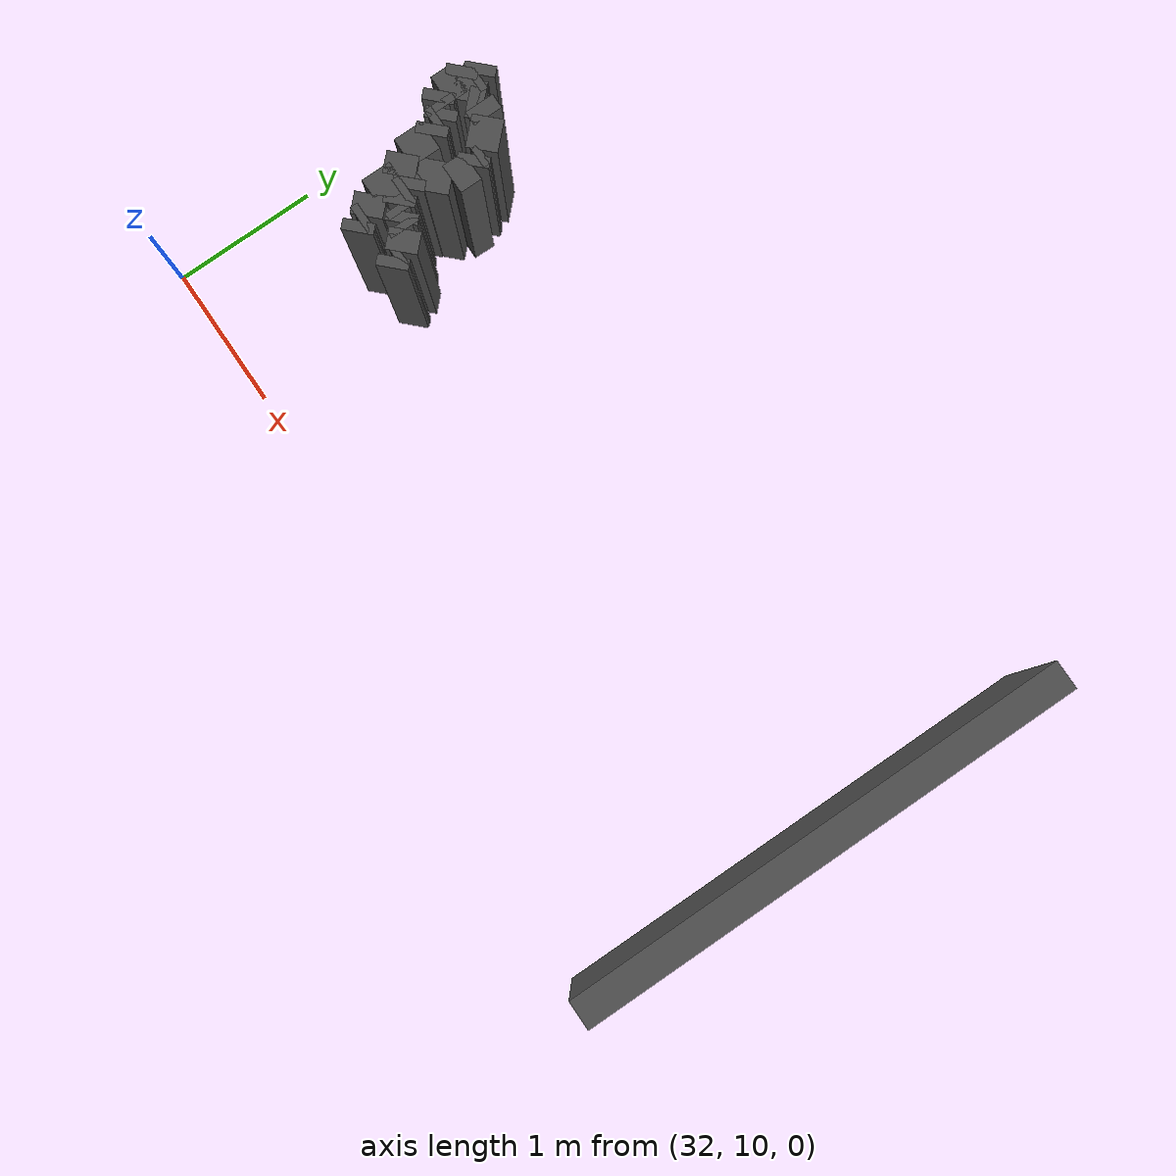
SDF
<sdf version="1.9">
 <model name="generated_walls">
  <static>true</static>
  <link name="wall_155_10">
   <pose>37.400 11.275 0.75 0 0 1.571</pose>
   <collision name="collision"><geometry><box><size>3.450 0.2 1.5</size></box></geometry></collision>
   <visual name="visual">
    <geometry><box><size>3.450 0.2 1.5</size></box></geometry>
    <material><ambient>0.3 0.3 0.3 1</ambient></material>
   </visual>
  </link>
  <link name="wall_161_1437">
   <pose>32.825 11.075 0.75 0 0 2.356</pose>
   <collision name="collision"><geometry><box><size>0.071 0.2 1.5</size></box></geometry></collision>
   <visual name="visual">
    <geometry><box><size>0.071 0.2 1.5</size></box></geometry>
    <material><ambient>0.3 0.3 0.3 1</ambient></material>
   </visual>
  </link>
  <link name="wall_161_1438">
   <pose>32.800 11.125 0.75 0 0 1.571</pose>
   <collision name="collision"><geometry><box><size>0.050 0.2 1.5</size></box></geometry></collision>
   <visual name="visual">
    <geometry><box><size>0.050 0.2 1.5</size></box></geometry>
    <material><ambient>0.3 0.3 0.3 1</ambient></material>
   </visual>
  </link>
  <link name="wall_161_1439">
   <pose>32.750 11.200 0.75 0 0 2.356</pose>
   <collision name="collision"><geometry><box><size>0.141 0.2 1.5</size></box></geometry></collision>
   <visual name="visual">
    <geometry><box><size>0.141 0.2 1.5</size></box></geometry>
    <material><ambient>0.3 0.3 0.3 1</ambient></material>
   </visual>
  </link>
  <link name="wall_161_1440">
   <pose>32.700 11.350 0.75 0 0 1.571</pose>
   <collision name="collision"><geometry><box><size>0.200 0.2 1.5</size></box></geometry></collision>
   <visual name="visual">
    <geometry><box><size>0.200 0.2 1.5</size></box></geometry>
    <material><ambient>0.3 0.3 0.3 1</ambient></material>
   </visual>
  </link>
  <link name="wall_161_1441">
   <pose>32.650 11.500 0.75 0 0 2.356</pose>
   <collision name="collision"><geometry><box><size>0.141 0.2 1.5</size></box></geometry></collision>
   <visual name="visual">
    <geometry><box><size>0.141 0.2 1.5</size></box></geometry>
    <material><ambient>0.3 0.3 0.3 1</ambient></material>
   </visual>
  </link>
  <link name="wall_161_1442">
   <pose>32.600 11.650 0.75 0 0 1.571</pose>
   <collision name="collision"><geometry><box><size>0.200 0.2 1.5</size></box></geometry></collision>
   <visual name="visual">
    <geometry><box><size>0.200 0.2 1.5</size></box></geometry>
    <material><ambient>0.3 0.3 0.3 1</ambient></material>
   </visual>
  </link>
  <link name="wall_161_1443">
   <pose>32.575 11.775 0.75 0 0 2.356</pose>
   <collision name="collision"><geometry><box><size>0.071 0.2 1.5</size></box></geometry></collision>
   <visual name="visual">
    <geometry><box><size>0.071 0.2 1.5</size></box></geometry>
    <material><ambient>0.3 0.3 0.3 1</ambient></material>
   </visual>
  </link>
  <link name="wall_161_1444">
   <pose>32.550 11.825 0.75 0 0 1.571</pose>
   <collision name="collision"><geometry><box><size>0.050 0.2 1.5</size></box></geometry></collision>
   <visual name="visual">
    <geometry><box><size>0.050 0.2 1.5</size></box></geometry>
    <material><ambient>0.3 0.3 0.3 1</ambient></material>
   </visual>
  </link>
  <link name="wall_161_1445">
   <pose>32.525 11.875 0.75 0 0 2.356</pose>
   <collision name="collision"><geometry><box><size>0.071 0.2 1.5</size></box></geometry></collision>
   <visual name="visual">
    <geometry><box><size>0.071 0.2 1.5</size></box></geometry>
    <material><ambient>0.3 0.3 0.3 1</ambient></material>
   </visual>
  </link>
  <link name="wall_161_1446">
   <pose>32.475 11.900 0.75 0 0 3.142</pose>
   <collision name="collision"><geometry><box><size>0.050 0.2 1.5</size></box></geometry></collision>
   <visual name="visual">
    <geometry><box><size>0.050 0.2 1.5</size></box></geometry>
    <material><ambient>0.3 0.3 0.3 1</ambient></material>
   </visual>
  </link>
  <link name="wall_161_1447">
   <pose>32.425 11.925 0.75 0 0 2.356</pose>
   <collision name="collision"><geometry><box><size>0.071 0.2 1.5</size></box></geometry></collision>
   <visual name="visual">
    <geometry><box><size>0.071 0.2 1.5</size></box></geometry>
    <material><ambient>0.3 0.3 0.3 1</ambient></material>
   </visual>
  </link>
  <link name="wall_161_1448">
   <pose>32.400 12.025 0.75 0 0 1.571</pose>
   <collision name="collision"><geometry><box><size>0.150 0.2 1.5</size></box></geometry></collision>
   <visual name="visual">
    <geometry><box><size>0.150 0.2 1.5</size></box></geometry>
    <material><ambient>0.3 0.3 0.3 1</ambient></material>
   </visual>
  </link>
  <link name="wall_161_1449">
   <pose>32.375 12.125 0.75 0 0 2.356</pose>
   <collision name="collision"><geometry><box><size>0.071 0.2 1.5</size></box></geometry></collision>
   <visual name="visual">
    <geometry><box><size>0.071 0.2 1.5</size></box></geometry>
    <material><ambient>0.3 0.3 0.3 1</ambient></material>
   </visual>
  </link>
  <link name="wall_161_2708">
   <pose>32.425 12.225 0.75 0 0 -0.785</pose>
   <collision name="collision"><geometry><box><size>0.071 0.2 1.5</size></box></geometry></collision>
   <visual name="visual">
    <geometry><box><size>0.071 0.2 1.5</size></box></geometry>
    <material><ambient>0.3 0.3 0.3 1</ambient></material>
   </visual>
  </link>
  <link name="wall_161_2709">
   <pose>32.450 12.175 0.75 0 0 -1.571</pose>
   <collision name="collision"><geometry><box><size>0.050 0.2 1.5</size></box></geometry></collision>
   <visual name="visual">
    <geometry><box><size>0.050 0.2 1.5</size></box></geometry>
    <material><ambient>0.3 0.3 0.3 1</ambient></material>
   </visual>
  </link>
  <link name="wall_161_2710">
   <pose>32.500 12.100 0.75 0 0 -0.785</pose>
   <collision name="collision"><geometry><box><size>0.141 0.2 1.5</size></box></geometry></collision>
   <visual name="visual">
    <geometry><box><size>0.141 0.2 1.5</size></box></geometry>
    <material><ambient>0.3 0.3 0.3 1</ambient></material>
   </visual>
  </link>
  <link name="wall_161_2711">
   <pose>32.575 12.075 0.75 0 0 0.785</pose>
   <collision name="collision"><geometry><box><size>0.071 0.2 1.5</size></box></geometry></collision>
   <visual name="visual">
    <geometry><box><size>0.071 0.2 1.5</size></box></geometry>
    <material><ambient>0.3 0.3 0.3 1</ambient></material>
   </visual>
  </link>
  <link name="wall_161_2712">
   <pose>32.650 12.100 0.75 0 0 0.000</pose>
   <collision name="collision"><geometry><box><size>0.100 0.2 1.5</size></box></geometry></collision>
   <visual name="visual">
    <geometry><box><size>0.100 0.2 1.5</size></box></geometry>
    <material><ambient>0.3 0.3 0.3 1</ambient></material>
   </visual>
  </link>
  <link name="wall_161_2713">
   <pose>32.775 12.025 0.75 0 0 -0.785</pose>
   <collision name="collision"><geometry><box><size>0.212 0.2 1.5</size></box></geometry></collision>
   <visual name="visual">
    <geometry><box><size>0.212 0.2 1.5</size></box></geometry>
    <material><ambient>0.3 0.3 0.3 1</ambient></material>
   </visual>
  </link>
  <link name="wall_161_2714">
   <pose>32.850 11.925 0.75 0 0 -1.571</pose>
   <collision name="collision"><geometry><box><size>0.050 0.2 1.5</size></box></geometry></collision>
   <visual name="visual">
    <geometry><box><size>0.050 0.2 1.5</size></box></geometry>
    <material><ambient>0.3 0.3 0.3 1</ambient></material>
   </visual>
  </link>
  <link name="wall_161_2715">
   <pose>32.875 11.875 0.75 0 0 -0.785</pose>
   <collision name="collision"><geometry><box><size>0.071 0.2 1.5</size></box></geometry></collision>
   <visual name="visual">
    <geometry><box><size>0.071 0.2 1.5</size></box></geometry>
    <material><ambient>0.3 0.3 0.3 1</ambient></material>
   </visual>
  </link>
  <link name="wall_161_2716">
   <pose>32.900 11.775 0.75 0 0 -1.571</pose>
   <collision name="collision"><geometry><box><size>0.150 0.2 1.5</size></box></geometry></collision>
   <visual name="visual">
    <geometry><box><size>0.150 0.2 1.5</size></box></geometry>
    <material><ambient>0.3 0.3 0.3 1</ambient></material>
   </visual>
  </link>
  <link name="wall_161_2717">
   <pose>32.825 11.625 0.75 0 0 -2.356</pose>
   <collision name="collision"><geometry><box><size>0.212 0.2 1.5</size></box></geometry></collision>
   <visual name="visual">
    <geometry><box><size>0.212 0.2 1.5</size></box></geometry>
    <material><ambient>0.3 0.3 0.3 1</ambient></material>
   </visual>
  </link>
  <link name="wall_161_2718">
   <pose>32.750 11.525 0.75 0 0 -1.571</pose>
   <collision name="collision"><geometry><box><size>0.050 0.2 1.5</size></box></geometry></collision>
   <visual name="visual">
    <geometry><box><size>0.050 0.2 1.5</size></box></geometry>
    <material><ambient>0.3 0.3 0.3 1</ambient></material>
   </visual>
  </link>
  <link name="wall_161_2719">
   <pose>32.775 11.475 0.75 0 0 -0.785</pose>
   <collision name="collision"><geometry><box><size>0.071 0.2 1.5</size></box></geometry></collision>
   <visual name="visual">
    <geometry><box><size>0.071 0.2 1.5</size></box></geometry>
    <material><ambient>0.3 0.3 0.3 1</ambient></material>
   </visual>
  </link>
  <link name="wall_161_2720">
   <pose>32.800 11.425 0.75 0 0 -1.571</pose>
   <collision name="collision"><geometry><box><size>0.050 0.2 1.5</size></box></geometry></collision>
   <visual name="visual">
    <geometry><box><size>0.050 0.2 1.5</size></box></geometry>
    <material><ambient>0.3 0.3 0.3 1</ambient></material>
   </visual>
  </link>
  <link name="wall_161_2721">
   <pose>32.825 11.375 0.75 0 0 -0.785</pose>
   <collision name="collision"><geometry><box><size>0.071 0.2 1.5</size></box></geometry></collision>
   <visual name="visual">
    <geometry><box><size>0.071 0.2 1.5</size></box></geometry>
    <material><ambient>0.3 0.3 0.3 1</ambient></material>
   </visual>
  </link>
  <link name="wall_161_2722">
   <pose>32.875 11.350 0.75 0 0 0.000</pose>
   <collision name="collision"><geometry><box><size>0.050 0.2 1.5</size></box></geometry></collision>
   <visual name="visual">
    <geometry><box><size>0.050 0.2 1.5</size></box></geometry>
    <material><ambient>0.3 0.3 0.3 1</ambient></material>
   </visual>
  </link>
  <link name="wall_161_2723">
   <pose>32.925 11.325 0.75 0 0 -0.785</pose>
   <collision name="collision"><geometry><box><size>0.071 0.2 1.5</size></box></geometry></collision>
   <visual name="visual">
    <geometry><box><size>0.071 0.2 1.5</size></box></geometry>
    <material><ambient>0.3 0.3 0.3 1</ambient></material>
   </visual>
  </link>
  <link name="wall_161_2724">
   <pose>32.975 11.300 0.75 0 0 0.000</pose>
   <collision name="collision"><geometry><box><size>0.050 0.2 1.5</size></box></geometry></collision>
   <visual name="visual">
    <geometry><box><size>0.050 0.2 1.5</size></box></geometry>
    <material><ambient>0.3 0.3 0.3 1</ambient></material>
   </visual>
  </link>
  <link name="wall_161_2725">
   <pose>33.050 11.250 0.75 0 0 -0.785</pose>
   <collision name="collision"><geometry><box><size>0.141 0.2 1.5</size></box></geometry></collision>
   <visual name="visual">
    <geometry><box><size>0.141 0.2 1.5</size></box></geometry>
    <material><ambient>0.3 0.3 0.3 1</ambient></material>
   </visual>
  </link>
  <link name="wall_161_2726">
   <pose>33.100 11.175 0.75 0 0 -1.571</pose>
   <collision name="collision"><geometry><box><size>0.050 0.2 1.5</size></box></geometry></collision>
   <visual name="visual">
    <geometry><box><size>0.050 0.2 1.5</size></box></geometry>
    <material><ambient>0.3 0.3 0.3 1</ambient></material>
   </visual>
  </link>
  <link name="wall_161_2727">
   <pose>33.125 11.125 0.75 0 0 -0.785</pose>
   <collision name="collision"><geometry><box><size>0.071 0.2 1.5</size></box></geometry></collision>
   <visual name="visual">
    <geometry><box><size>0.071 0.2 1.5</size></box></geometry>
    <material><ambient>0.3 0.3 0.3 1</ambient></material>
   </visual>
  </link>
 </model>
</sdf>
